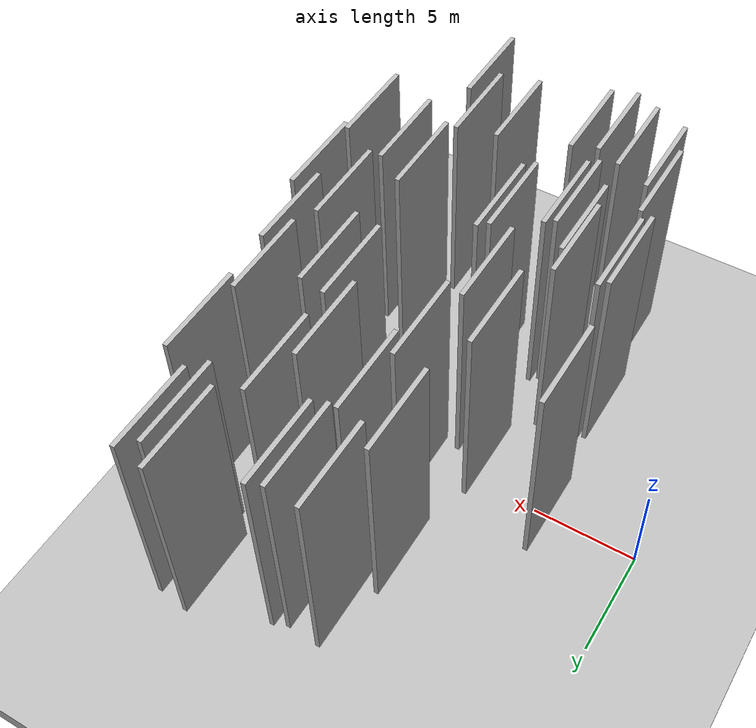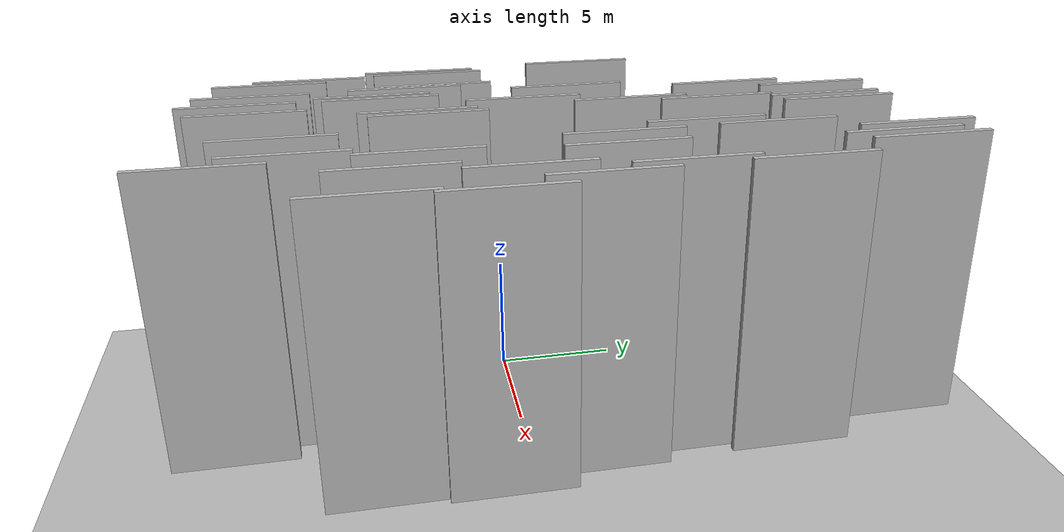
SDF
<?xml version="1.0" encoding="utf-8"?>

<sdf version="1.6">

   <world name="default">

      <gui fullscreen="0">

         <camera name="user_camera">

            <pose>-15 0 4.57585 0 0 0</pose>

            <view_controller>orbit</view_controller>

         </camera>

      </gui>

      <scene>

         <sky>

           <clouds>

             <speed>12</speed>

           </clouds>

         </sky>

         <ambient>0.4 0.4 0.4 1</ambient>

         <background>0.7 0.7 0.7 1</background>

         <shadows>1</shadows>

      </scene>

      <gravity>0 0 -9.8066</gravity>

      <magnetic_field>6e-06 2.3e-05 -4.2e-05</magnetic_field>

      <physics default="0" name="default_physics" type="ode">

         <ode>

            <solver>

               <type>quick</type>

               <iters>10</iters>

               <sor>1.0</sor>

               <use_dynamic_moi_rescaling>0</use_dynamic_moi_rescaling>

            </solver>

            <constraints>

               <cfm>0</cfm>

               <erp>0.2</erp>

               <contact_max_correcting_vel>100</contact_max_correcting_vel>

               <contact_surface_layer>0.001</contact_surface_layer>

            </constraints>

         </ode>

         <max_step_size>0.004</max_step_size>

         <real_time_factor>1</real_time_factor>

         <real_time_update_rate>250</real_time_update_rate>

      </physics>

      <light name="sun" type="directional">

         <cast_shadows>1</cast_shadows>

         <pose>0 0 10 0 0 0</pose>

         <diffuse>0.8 0.8 0.8 1</diffuse>

         <specular>0.2 0.2 0.2 1</specular>

         <attenuation>

            <range>1000</range>

            <constant>0.9</constant>

            <linear>0.01</linear>

            <quadratic>0.001</quadratic>

         </attenuation>

         <direction>-0.5 0.1 -0.9</direction>

      </light>

      <include>

         <name>ground_plane_1</name>

         <uri>model://HANNAS_ground_plane</uri>

         <pose>0 0 0  0 0 0</pose>

      </include>

      <include>

         <name>ground_plane_2</name>

         <uri>model://HANNAS_ground_plane</uri>

         <pose>100 0 0  0 0 0</pose>

      </include>

      <model name="HANNAS_wall_1">

         <static>1</static>

         <pose frame="">13.7882 2.1451 5.0 0.000000 0.000000 1.570796</pose>

         <link name="link">

            <pose frame="">0 0 5.00 0 0 0</pose>

            <collision name="collision">

               <geometry>

                  <box>

                     <size>4.00 0.2 10.00</size>

                  </box>

               </geometry>

               <max_contacts>10</max_contacts>

               <surface>

                  <contact>

                     <ode/>

                  </contact>

                  <bounce/>

                  <friction>

                     <torsional>

                        <ode/>

                     </torsional>

                     <ode/>

                  </friction>

               </surface>

            </collision>

            <visual name="visual">

               <cast_shadows>0</cast_shadows>

               <geometry>

                  <box>

                     <size>4.00 0.2 10.00</size>

                  </box>

               </geometry>

               <material>

                  <script>

                     <uri>model://HANNAS_wall/materials/scripts</uri>

                     <uri>model://HANNAS_wall/materials/textures</uri>

                     <name>vrc/HANNAS_wall</name>

                  </script>

               </material>

            </visual>

            <self_collide>0</self_collide>

            <enable_wind>0</enable_wind>

            <kinematic>0</kinematic>

         </link>

      </model>

      <model name="HANNAS_wall_2">

         <static>1</static>

         <pose frame="">15.2211 -1.1042 5.0 0.000000 0.000000 1.570796</pose>

         <link name="link">

            <pose frame="">0 0 5.00 0 0 0</pose>

            <collision name="collision">

               <geometry>

                  <box>

                     <size>4.00 0.2 10.00</size>

                  </box>

               </geometry>

               <max_contacts>10</max_contacts>

               <surface>

                  <contact>

                     <ode/>

                  </contact>

                  <bounce/>

                  <friction>

                     <torsional>

                        <ode/>

                     </torsional>

                     <ode/>

                  </friction>

               </surface>

            </collision>

            <visual name="visual">

               <cast_shadows>0</cast_shadows>

               <geometry>

                  <box>

                     <size>4.00 0.2 10.00</size>

                  </box>

               </geometry>

               <material>

                  <script>

                     <uri>model://HANNAS_wall/materials/scripts</uri>

                     <uri>model://HANNAS_wall/materials/textures</uri>

                     <name>vrc/HANNAS_wall</name>

                  </script>

               </material>

            </visual>

            <self_collide>0</self_collide>

            <enable_wind>0</enable_wind>

            <kinematic>0</kinematic>

         </link>

      </model>

      <model name="HANNAS_wall_3">

         <static>1</static>

         <pose frame="">16.7750 -5.7609 5.0 0.000000 0.000000 1.570796</pose>

         <link name="link">

            <pose frame="">0 0 5.00 0 0 0</pose>

            <collision name="collision">

               <geometry>

                  <box>

                     <size>4.00 0.2 10.00</size>

                  </box>

               </geometry>

               <max_contacts>10</max_contacts>

               <surface>

                  <contact>

                     <ode/>

                  </contact>

                  <bounce/>

                  <friction>

                     <torsional>

                        <ode/>

                     </torsional>

                     <ode/>

                  </friction>

               </surface>

            </collision>

            <visual name="visual">

               <cast_shadows>0</cast_shadows>

               <geometry>

                  <box>

                     <size>4.00 0.2 10.00</size>

                  </box>

               </geometry>

               <material>

                  <script>

                     <uri>model://HANNAS_wall/materials/scripts</uri>

                     <uri>model://HANNAS_wall/materials/textures</uri>

                     <name>vrc/HANNAS_wall</name>

                  </script>

               </material>

            </visual>

            <self_collide>0</self_collide>

            <enable_wind>0</enable_wind>

            <kinematic>0</kinematic>

         </link>

      </model>

      <model name="HANNAS_wall_4">

         <static>1</static>

         <pose frame="">12.6694 2.3219 5.0 0.000000 0.000000 1.570796</pose>

         <link name="link">

            <pose frame="">0 0 5.00 0 0 0</pose>

            <collision name="collision">

               <geometry>

                  <box>

                     <size>4.00 0.2 10.00</size>

                  </box>

               </geometry>

               <max_contacts>10</max_contacts>

               <surface>

                  <contact>

                     <ode/>

                  </contact>

                  <bounce/>

                  <friction>

                     <torsional>

                        <ode/>

                     </torsional>

                     <ode/>

                  </friction>

               </surface>

            </collision>

            <visual name="visual">

               <cast_shadows>0</cast_shadows>

               <geometry>

                  <box>

                     <size>4.00 0.2 10.00</size>

                  </box>

               </geometry>

               <material>

                  <script>

                     <uri>model://HANNAS_wall/materials/scripts</uri>

                     <uri>model://HANNAS_wall/materials/textures</uri>

                     <name>vrc/HANNAS_wall</name>

                  </script>

               </material>

            </visual>

            <self_collide>0</self_collide>

            <enable_wind>0</enable_wind>

            <kinematic>0</kinematic>

         </link>

      </model>

      <model name="HANNAS_wall_5">

         <static>1</static>

         <pose frame="">6.9106 -5.2990 5.0 0.000000 0.000000 1.570796</pose>

         <link name="link">

            <pose frame="">0 0 5.00 0 0 0</pose>

            <collision name="collision">

               <geometry>

                  <box>

                     <size>4.00 0.2 10.00</size>

                  </box>

               </geometry>

               <max_contacts>10</max_contacts>

               <surface>

                  <contact>

                     <ode/>

                  </contact>

                  <bounce/>

                  <friction>

                     <torsional>

                        <ode/>

                     </torsional>

                     <ode/>

                  </friction>

               </surface>

            </collision>

            <visual name="visual">

               <cast_shadows>0</cast_shadows>

               <geometry>

                  <box>

                     <size>4.00 0.2 10.00</size>

                  </box>

               </geometry>

               <material>

                  <script>

                     <uri>model://HANNAS_wall/materials/scripts</uri>

                     <uri>model://HANNAS_wall/materials/textures</uri>

                     <name>vrc/HANNAS_wall</name>

                  </script>

               </material>

            </visual>

            <self_collide>0</self_collide>

            <enable_wind>0</enable_wind>

            <kinematic>0</kinematic>

         </link>

      </model>

      <model name="HANNAS_wall_6">

         <static>1</static>

         <pose frame="">12.5727 7.4707 5.0 0.000000 0.000000 1.570796</pose>

         <link name="link">

            <pose frame="">0 0 5.00 0 0 0</pose>

            <collision name="collision">

               <geometry>

                  <box>

                     <size>4.00 0.2 10.00</size>

                  </box>

               </geometry>

               <max_contacts>10</max_contacts>

               <surface>

                  <contact>

                     <ode/>

                  </contact>

                  <bounce/>

                  <friction>

                     <torsional>

                        <ode/>

                     </torsional>

                     <ode/>

                  </friction>

               </surface>

            </collision>

            <visual name="visual">

               <cast_shadows>0</cast_shadows>

               <geometry>

                  <box>

                     <size>4.00 0.2 10.00</size>

                  </box>

               </geometry>

               <material>

                  <script>

                     <uri>model://HANNAS_wall/materials/scripts</uri>

                     <uri>model://HANNAS_wall/materials/textures</uri>

                     <name>vrc/HANNAS_wall</name>

                  </script>

               </material>

            </visual>

            <self_collide>0</self_collide>

            <enable_wind>0</enable_wind>

            <kinematic>0</kinematic>

         </link>

      </model>

      <model name="HANNAS_wall_7">

         <static>1</static>

         <pose frame="">4.0674 -3.1351 5.0 0.000000 0.000000 1.570796</pose>

         <link name="link">

            <pose frame="">0 0 5.00 0 0 0</pose>

            <collision name="collision">

               <geometry>

                  <box>

                     <size>4.00 0.2 10.00</size>

                  </box>

               </geometry>

               <max_contacts>10</max_contacts>

               <surface>

                  <contact>

                     <ode/>

                  </contact>

                  <bounce/>

                  <friction>

                     <torsional>

                        <ode/>

                     </torsional>

                     <ode/>

                  </friction>

               </surface>

            </collision>

            <visual name="visual">

               <cast_shadows>0</cast_shadows>

               <geometry>

                  <box>

                     <size>4.00 0.2 10.00</size>

                  </box>

               </geometry>

               <material>

                  <script>

                     <uri>model://HANNAS_wall/materials/scripts</uri>

                     <uri>model://HANNAS_wall/materials/textures</uri>

                     <name>vrc/HANNAS_wall</name>

                  </script>

               </material>

            </visual>

            <self_collide>0</self_collide>

            <enable_wind>0</enable_wind>

            <kinematic>0</kinematic>

         </link>

      </model>

      <model name="HANNAS_wall_8">

         <static>1</static>

         <pose frame="">14.2873 10.9999 5.0 0.000000 0.000000 1.570796</pose>

         <link name="link">

            <pose frame="">0 0 5.00 0 0 0</pose>

            <collision name="collision">

               <geometry>

                  <box>

                     <size>4.00 0.2 10.00</size>

                  </box>

               </geometry>

               <max_contacts>10</max_contacts>

               <surface>

                  <contact>

                     <ode/>

                  </contact>

                  <bounce/>

                  <friction>

                     <torsional>

                        <ode/>

                     </torsional>

                     <ode/>

                  </friction>

               </surface>

            </collision>

            <visual name="visual">

               <cast_shadows>0</cast_shadows>

               <geometry>

                  <box>

                     <size>4.00 0.2 10.00</size>

                  </box>

               </geometry>

               <material>

                  <script>

                     <uri>model://HANNAS_wall/materials/scripts</uri>

                     <uri>model://HANNAS_wall/materials/textures</uri>

                     <name>vrc/HANNAS_wall</name>

                  </script>

               </material>

            </visual>

            <self_collide>0</self_collide>

            <enable_wind>0</enable_wind>

            <kinematic>0</kinematic>

         </link>

      </model>

      <model name="HANNAS_wall_9">

         <static>1</static>

         <pose frame="">9.0641 -3.8773 5.0 0.000000 0.000000 1.570796</pose>

         <link name="link">

            <pose frame="">0 0 5.00 0 0 0</pose>

            <collision name="collision">

               <geometry>

                  <box>

                     <size>4.00 0.2 10.00</size>

                  </box>

               </geometry>

               <max_contacts>10</max_contacts>

               <surface>

                  <contact>

                     <ode/>

                  </contact>

                  <bounce/>

                  <friction>

                     <torsional>

                        <ode/>

                     </torsional>

                     <ode/>

                  </friction>

               </surface>

            </collision>

            <visual name="visual">

               <cast_shadows>0</cast_shadows>

               <geometry>

                  <box>

                     <size>4.00 0.2 10.00</size>

                  </box>

               </geometry>

               <material>

                  <script>

                     <uri>model://HANNAS_wall/materials/scripts</uri>

                     <uri>model://HANNAS_wall/materials/textures</uri>

                     <name>vrc/HANNAS_wall</name>

                  </script>

               </material>

            </visual>

            <self_collide>0</self_collide>

            <enable_wind>0</enable_wind>

            <kinematic>0</kinematic>

         </link>

      </model>

      <model name="HANNAS_wall_10">

         <static>1</static>

         <pose frame="">9.3653 6.4794 5.0 0.000000 0.000000 1.570796</pose>

         <link name="link">

            <pose frame="">0 0 5.00 0 0 0</pose>

            <collision name="collision">

               <geometry>

                  <box>

                     <size>4.00 0.2 10.00</size>

                  </box>

               </geometry>

               <max_contacts>10</max_contacts>

               <surface>

                  <contact>

                     <ode/>

                  </contact>

                  <bounce/>

                  <friction>

                     <torsional>

                        <ode/>

                     </torsional>

                     <ode/>

                  </friction>

               </surface>

            </collision>

            <visual name="visual">

               <cast_shadows>0</cast_shadows>

               <geometry>

                  <box>

                     <size>4.00 0.2 10.00</size>

                  </box>

               </geometry>

               <material>

                  <script>

                     <uri>model://HANNAS_wall/materials/scripts</uri>

                     <uri>model://HANNAS_wall/materials/textures</uri>

                     <name>vrc/HANNAS_wall</name>

                  </script>

               </material>

            </visual>

            <self_collide>0</self_collide>

            <enable_wind>0</enable_wind>

            <kinematic>0</kinematic>

         </link>

      </model>

      <model name="HANNAS_wall_11">

         <static>1</static>

         <pose frame="">13.5798 11.8175 5.0 0.000000 0.000000 1.570796</pose>

         <link name="link">

            <pose frame="">0 0 5.00 0 0 0</pose>

            <collision name="collision">

               <geometry>

                  <box>

                     <size>4.00 0.2 10.00</size>

                  </box>

               </geometry>

               <max_contacts>10</max_contacts>

               <surface>

                  <contact>

                     <ode/>

                  </contact>

                  <bounce/>

                  <friction>

                     <torsional>

                        <ode/>

                     </torsional>

                     <ode/>

                  </friction>

               </surface>

            </collision>

            <visual name="visual">

               <cast_shadows>0</cast_shadows>

               <geometry>

                  <box>

                     <size>4.00 0.2 10.00</size>

                  </box>

               </geometry>

               <material>

                  <script>

                     <uri>model://HANNAS_wall/materials/scripts</uri>

                     <uri>model://HANNAS_wall/materials/textures</uri>

                     <name>vrc/HANNAS_wall</name>

                  </script>

               </material>

            </visual>

            <self_collide>0</self_collide>

            <enable_wind>0</enable_wind>

            <kinematic>0</kinematic>

         </link>

      </model>

      <model name="HANNAS_wall_12">

         <static>1</static>

         <pose frame="">5.8430 -2.9900 5.0 0.000000 0.000000 1.570796</pose>

         <link name="link">

            <pose frame="">0 0 5.00 0 0 0</pose>

            <collision name="collision">

               <geometry>

                  <box>

                     <size>4.00 0.2 10.00</size>

                  </box>

               </geometry>

               <max_contacts>10</max_contacts>

               <surface>

                  <contact>

                     <ode/>

                  </contact>

                  <bounce/>

                  <friction>

                     <torsional>

                        <ode/>

                     </torsional>

                     <ode/>

                  </friction>

               </surface>

            </collision>

            <visual name="visual">

               <cast_shadows>0</cast_shadows>

               <geometry>

                  <box>

                     <size>4.00 0.2 10.00</size>

                  </box>

               </geometry>

               <material>

                  <script>

                     <uri>model://HANNAS_wall/materials/scripts</uri>

                     <uri>model://HANNAS_wall/materials/textures</uri>

                     <name>vrc/HANNAS_wall</name>

                  </script>

               </material>

            </visual>

            <self_collide>0</self_collide>

            <enable_wind>0</enable_wind>

            <kinematic>0</kinematic>

         </link>

      </model>

      <model name="HANNAS_wall_13">

         <static>1</static>

         <pose frame="">12.9214 -8.0760 5.0 0.000000 0.000000 1.570796</pose>

         <link name="link">

            <pose frame="">0 0 5.00 0 0 0</pose>

            <collision name="collision">

               <geometry>

                  <box>

                     <size>4.00 0.2 10.00</size>

                  </box>

               </geometry>

               <max_contacts>10</max_contacts>

               <surface>

                  <contact>

                     <ode/>

                  </contact>

                  <bounce/>

                  <friction>

                     <torsional>

                        <ode/>

                     </torsional>

                     <ode/>

                  </friction>

               </surface>

            </collision>

            <visual name="visual">

               <cast_shadows>0</cast_shadows>

               <geometry>

                  <box>

                     <size>4.00 0.2 10.00</size>

                  </box>

               </geometry>

               <material>

                  <script>

                     <uri>model://HANNAS_wall/materials/scripts</uri>

                     <uri>model://HANNAS_wall/materials/textures</uri>

                     <name>vrc/HANNAS_wall</name>

                  </script>

               </material>

            </visual>

            <self_collide>0</self_collide>

            <enable_wind>0</enable_wind>

            <kinematic>0</kinematic>

         </link>

      </model>

      <model name="HANNAS_wall_14">

         <static>1</static>

         <pose frame="">7.5355 7.4163 5.0 0.000000 0.000000 1.570796</pose>

         <link name="link">

            <pose frame="">0 0 5.00 0 0 0</pose>

            <collision name="collision">

               <geometry>

                  <box>

                     <size>4.00 0.2 10.00</size>

                  </box>

               </geometry>

               <max_contacts>10</max_contacts>

               <surface>

                  <contact>

                     <ode/>

                  </contact>

                  <bounce/>

                  <friction>

                     <torsional>

                        <ode/>

                     </torsional>

                     <ode/>

                  </friction>

               </surface>

            </collision>

            <visual name="visual">

               <cast_shadows>0</cast_shadows>

               <geometry>

                  <box>

                     <size>4.00 0.2 10.00</size>

                  </box>

               </geometry>

               <material>

                  <script>

                     <uri>model://HANNAS_wall/materials/scripts</uri>

                     <uri>model://HANNAS_wall/materials/textures</uri>

                     <name>vrc/HANNAS_wall</name>

                  </script>

               </material>

            </visual>

            <self_collide>0</self_collide>

            <enable_wind>0</enable_wind>

            <kinematic>0</kinematic>

         </link>

      </model>

      <model name="HANNAS_wall_15">

         <static>1</static>

         <pose frame="">6.0654 -4.1187 5.0 0.000000 0.000000 1.570796</pose>

         <link name="link">

            <pose frame="">0 0 5.00 0 0 0</pose>

            <collision name="collision">

               <geometry>

                  <box>

                     <size>4.00 0.2 10.00</size>

                  </box>

               </geometry>

               <max_contacts>10</max_contacts>

               <surface>

                  <contact>

                     <ode/>

                  </contact>

                  <bounce/>

                  <friction>

                     <torsional>

                        <ode/>

                     </torsional>

                     <ode/>

                  </friction>

               </surface>

            </collision>

            <visual name="visual">

               <cast_shadows>0</cast_shadows>

               <geometry>

                  <box>

                     <size>4.00 0.2 10.00</size>

                  </box>

               </geometry>

               <material>

                  <script>

                     <uri>model://HANNAS_wall/materials/scripts</uri>

                     <uri>model://HANNAS_wall/materials/textures</uri>

                     <name>vrc/HANNAS_wall</name>

                  </script>

               </material>

            </visual>

            <self_collide>0</self_collide>

            <enable_wind>0</enable_wind>

            <kinematic>0</kinematic>

         </link>

      </model>

      <model name="HANNAS_wall_16">

         <static>1</static>

         <pose frame="">9.4680 -3.5441 5.0 0.000000 0.000000 1.570796</pose>

         <link name="link">

            <pose frame="">0 0 5.00 0 0 0</pose>

            <collision name="collision">

               <geometry>

                  <box>

                     <size>4.00 0.2 10.00</size>

                  </box>

               </geometry>

               <max_contacts>10</max_contacts>

               <surface>

                  <contact>

                     <ode/>

                  </contact>

                  <bounce/>

                  <friction>

                     <torsional>

                        <ode/>

                     </torsional>

                     <ode/>

                  </friction>

               </surface>

            </collision>

            <visual name="visual">

               <cast_shadows>0</cast_shadows>

               <geometry>

                  <box>

                     <size>4.00 0.2 10.00</size>

                  </box>

               </geometry>

               <material>

                  <script>

                     <uri>model://HANNAS_wall/materials/scripts</uri>

                     <uri>model://HANNAS_wall/materials/textures</uri>

                     <name>vrc/HANNAS_wall</name>

                  </script>

               </material>

            </visual>

            <self_collide>0</self_collide>

            <enable_wind>0</enable_wind>

            <kinematic>0</kinematic>

         </link>

      </model>

      <model name="HANNAS_wall_17">

         <static>1</static>

         <pose frame="">6.8388 1.6233 5.0 0.000000 0.000000 1.570796</pose>

         <link name="link">

            <pose frame="">0 0 5.00 0 0 0</pose>

            <collision name="collision">

               <geometry>

                  <box>

                     <size>4.00 0.2 10.00</size>

                  </box>

               </geometry>

               <max_contacts>10</max_contacts>

               <surface>

                  <contact>

                     <ode/>

                  </contact>

                  <bounce/>

                  <friction>

                     <torsional>

                        <ode/>

                     </torsional>

                     <ode/>

                  </friction>

               </surface>

            </collision>

            <visual name="visual">

               <cast_shadows>0</cast_shadows>

               <geometry>

                  <box>

                     <size>4.00 0.2 10.00</size>

                  </box>

               </geometry>

               <material>

                  <script>

                     <uri>model://HANNAS_wall/materials/scripts</uri>

                     <uri>model://HANNAS_wall/materials/textures</uri>

                     <name>vrc/HANNAS_wall</name>

                  </script>

               </material>

            </visual>

            <self_collide>0</self_collide>

            <enable_wind>0</enable_wind>

            <kinematic>0</kinematic>

         </link>

      </model>

      <model name="HANNAS_wall_18">

         <static>1</static>

         <pose frame="">3.3852 2.7292 5.0 0.000000 0.000000 1.570796</pose>

         <link name="link">

            <pose frame="">0 0 5.00 0 0 0</pose>

            <collision name="collision">

               <geometry>

                  <box>

                     <size>4.00 0.2 10.00</size>

                  </box>

               </geometry>

               <max_contacts>10</max_contacts>

               <surface>

                  <contact>

                     <ode/>

                  </contact>

                  <bounce/>

                  <friction>

                     <torsional>

                        <ode/>

                     </torsional>

                     <ode/>

                  </friction>

               </surface>

            </collision>

            <visual name="visual">

               <cast_shadows>0</cast_shadows>

               <geometry>

                  <box>

                     <size>4.00 0.2 10.00</size>

                  </box>

               </geometry>

               <material>

                  <script>

                     <uri>model://HANNAS_wall/materials/scripts</uri>

                     <uri>model://HANNAS_wall/materials/textures</uri>

                     <name>vrc/HANNAS_wall</name>

                  </script>

               </material>

            </visual>

            <self_collide>0</self_collide>

            <enable_wind>0</enable_wind>

            <kinematic>0</kinematic>

         </link>

      </model>

      <model name="HANNAS_wall_19">

         <static>1</static>

         <pose frame="">8.9306 3.4871 5.0 0.000000 0.000000 1.570796</pose>

         <link name="link">

            <pose frame="">0 0 5.00 0 0 0</pose>

            <collision name="collision">

               <geometry>

                  <box>

                     <size>4.00 0.2 10.00</size>

                  </box>

               </geometry>

               <max_contacts>10</max_contacts>

               <surface>

                  <contact>

                     <ode/>

                  </contact>

                  <bounce/>

                  <friction>

                     <torsional>

                        <ode/>

                     </torsional>

                     <ode/>

                  </friction>

               </surface>

            </collision>

            <visual name="visual">

               <cast_shadows>0</cast_shadows>

               <geometry>

                  <box>

                     <size>4.00 0.2 10.00</size>

                  </box>

               </geometry>

               <material>

                  <script>

                     <uri>model://HANNAS_wall/materials/scripts</uri>

                     <uri>model://HANNAS_wall/materials/textures</uri>

                     <name>vrc/HANNAS_wall</name>

                  </script>

               </material>

            </visual>

            <self_collide>0</self_collide>

            <enable_wind>0</enable_wind>

            <kinematic>0</kinematic>

         </link>

      </model>

      <model name="HANNAS_wall_20">

         <static>1</static>

         <pose frame="">7.2857 -5.0212 5.0 0.000000 0.000000 1.570796</pose>

         <link name="link">

            <pose frame="">0 0 5.00 0 0 0</pose>

            <collision name="collision">

               <geometry>

                  <box>

                     <size>4.00 0.2 10.00</size>

                  </box>

               </geometry>

               <max_contacts>10</max_contacts>

               <surface>

                  <contact>

                     <ode/>

                  </contact>

                  <bounce/>

                  <friction>

                     <torsional>

                        <ode/>

                     </torsional>

                     <ode/>

                  </friction>

               </surface>

            </collision>

            <visual name="visual">

               <cast_shadows>0</cast_shadows>

               <geometry>

                  <box>

                     <size>4.00 0.2 10.00</size>

                  </box>

               </geometry>

               <material>

                  <script>

                     <uri>model://HANNAS_wall/materials/scripts</uri>

                     <uri>model://HANNAS_wall/materials/textures</uri>

                     <name>vrc/HANNAS_wall</name>

                  </script>

               </material>

            </visual>

            <self_collide>0</self_collide>

            <enable_wind>0</enable_wind>

            <kinematic>0</kinematic>

         </link>

      </model>

      <model name="HANNAS_wall_21">

         <static>1</static>

         <pose frame="">4.7145 -8.8698 5.0 0.000000 0.000000 1.570796</pose>

         <link name="link">

            <pose frame="">0 0 5.00 0 0 0</pose>

            <collision name="collision">

               <geometry>

                  <box>

                     <size>4.00 0.2 10.00</size>

                  </box>

               </geometry>

               <max_contacts>10</max_contacts>

               <surface>

                  <contact>

                     <ode/>

                  </contact>

                  <bounce/>

                  <friction>

                     <torsional>

                        <ode/>

                     </torsional>

                     <ode/>

                  </friction>

               </surface>

            </collision>

            <visual name="visual">

               <cast_shadows>0</cast_shadows>

               <geometry>

                  <box>

                     <size>4.00 0.2 10.00</size>

                  </box>

               </geometry>

               <material>

                  <script>

                     <uri>model://HANNAS_wall/materials/scripts</uri>

                     <uri>model://HANNAS_wall/materials/textures</uri>

                     <name>vrc/HANNAS_wall</name>

                  </script>

               </material>

            </visual>

            <self_collide>0</self_collide>

            <enable_wind>0</enable_wind>

            <kinematic>0</kinematic>

         </link>

      </model>

      <model name="HANNAS_wall_22">

         <static>1</static>

         <pose frame="">6.2030 -9.4338 5.0 0.000000 0.000000 1.570796</pose>

         <link name="link">

            <pose frame="">0 0 5.00 0 0 0</pose>

            <collision name="collision">

               <geometry>

                  <box>

                     <size>4.00 0.2 10.00</size>

                  </box>

               </geometry>

               <max_contacts>10</max_contacts>

               <surface>

                  <contact>

                     <ode/>

                  </contact>

                  <bounce/>

                  <friction>

                     <torsional>

                        <ode/>

                     </torsional>

                     <ode/>

                  </friction>

               </surface>

            </collision>

            <visual name="visual">

               <cast_shadows>0</cast_shadows>

               <geometry>

                  <box>

                     <size>4.00 0.2 10.00</size>

                  </box>

               </geometry>

               <material>

                  <script>

                     <uri>model://HANNAS_wall/materials/scripts</uri>

                     <uri>model://HANNAS_wall/materials/textures</uri>

                     <name>vrc/HANNAS_wall</name>

                  </script>

               </material>

            </visual>

            <self_collide>0</self_collide>

            <enable_wind>0</enable_wind>

            <kinematic>0</kinematic>

         </link>

      </model>

      <model name="HANNAS_wall_23">

         <static>1</static>

         <pose frame="">4.3025 -7.4743 5.0 0.000000 0.000000 1.570796</pose>

         <link name="link">

            <pose frame="">0 0 5.00 0 0 0</pose>

            <collision name="collision">

               <geometry>

                  <box>

                     <size>4.00 0.2 10.00</size>

                  </box>

               </geometry>

               <max_contacts>10</max_contacts>

               <surface>

                  <contact>

                     <ode/>

                  </contact>

                  <bounce/>

                  <friction>

                     <torsional>

                        <ode/>

                     </torsional>

                     <ode/>

                  </friction>

               </surface>

            </collision>

            <visual name="visual">

               <cast_shadows>0</cast_shadows>

               <geometry>

                  <box>

                     <size>4.00 0.2 10.00</size>

                  </box>

               </geometry>

               <material>

                  <script>

                     <uri>model://HANNAS_wall/materials/scripts</uri>

                     <uri>model://HANNAS_wall/materials/textures</uri>

                     <name>vrc/HANNAS_wall</name>

                  </script>

               </material>

            </visual>

            <self_collide>0</self_collide>

            <enable_wind>0</enable_wind>

            <kinematic>0</kinematic>

         </link>

      </model>

      <model name="HANNAS_wall_24">

         <static>1</static>

         <pose frame="">10.2997 10.6036 5.0 0.000000 0.000000 1.570796</pose>

         <link name="link">

            <pose frame="">0 0 5.00 0 0 0</pose>

            <collision name="collision">

               <geometry>

                  <box>

                     <size>4.00 0.2 10.00</size>

                  </box>

               </geometry>

               <max_contacts>10</max_contacts>

               <surface>

                  <contact>

                     <ode/>

                  </contact>

                  <bounce/>

                  <friction>

                     <torsional>

                        <ode/>

                     </torsional>

                     <ode/>

                  </friction>

               </surface>

            </collision>

            <visual name="visual">

               <cast_shadows>0</cast_shadows>

               <geometry>

                  <box>

                     <size>4.00 0.2 10.00</size>

                  </box>

               </geometry>

               <material>

                  <script>

                     <uri>model://HANNAS_wall/materials/scripts</uri>

                     <uri>model://HANNAS_wall/materials/textures</uri>

                     <name>vrc/HANNAS_wall</name>

                  </script>

               </material>

            </visual>

            <self_collide>0</self_collide>

            <enable_wind>0</enable_wind>

            <kinematic>0</kinematic>

         </link>

      </model>

      <model name="HANNAS_wall_25">

         <static>1</static>

         <pose frame="">11.9250 5.2454 5.0 0.000000 0.000000 1.570796</pose>

         <link name="link">

            <pose frame="">0 0 5.00 0 0 0</pose>

            <collision name="collision">

               <geometry>

                  <box>

                     <size>4.00 0.2 10.00</size>

                  </box>

               </geometry>

               <max_contacts>10</max_contacts>

               <surface>

                  <contact>

                     <ode/>

                  </contact>

                  <bounce/>

                  <friction>

                     <torsional>

                        <ode/>

                     </torsional>

                     <ode/>

                  </friction>

               </surface>

            </collision>

            <visual name="visual">

               <cast_shadows>0</cast_shadows>

               <geometry>

                  <box>

                     <size>4.00 0.2 10.00</size>

                  </box>

               </geometry>

               <material>

                  <script>

                     <uri>model://HANNAS_wall/materials/scripts</uri>

                     <uri>model://HANNAS_wall/materials/textures</uri>

                     <name>vrc/HANNAS_wall</name>

                  </script>

               </material>

            </visual>

            <self_collide>0</self_collide>

            <enable_wind>0</enable_wind>

            <kinematic>0</kinematic>

         </link>

      </model>

      <model name="HANNAS_wall_26">

         <static>1</static>

         <pose frame="">16.1038 7.2511 5.0 0.000000 0.000000 1.570796</pose>

         <link name="link">

            <pose frame="">0 0 5.00 0 0 0</pose>

            <collision name="collision">

               <geometry>

                  <box>

                     <size>4.00 0.2 10.00</size>

                  </box>

               </geometry>

               <max_contacts>10</max_contacts>

               <surface>

                  <contact>

                     <ode/>

                  </contact>

                  <bounce/>

                  <friction>

                     <torsional>

                        <ode/>

                     </torsional>

                     <ode/>

                  </friction>

               </surface>

            </collision>

            <visual name="visual">

               <cast_shadows>0</cast_shadows>

               <geometry>

                  <box>

                     <size>4.00 0.2 10.00</size>

                  </box>

               </geometry>

               <material>

                  <script>

                     <uri>model://HANNAS_wall/materials/scripts</uri>

                     <uri>model://HANNAS_wall/materials/textures</uri>

                     <name>vrc/HANNAS_wall</name>

                  </script>

               </material>

            </visual>

            <self_collide>0</self_collide>

            <enable_wind>0</enable_wind>

            <kinematic>0</kinematic>

         </link>

      </model>

      <model name="HANNAS_wall_27">

         <static>1</static>

         <pose frame="">13.6629 -10.5179 5.0 0.000000 0.000000 1.570796</pose>

         <link name="link">

            <pose frame="">0 0 5.00 0 0 0</pose>

            <collision name="collision">

               <geometry>

                  <box>

                     <size>4.00 0.2 10.00</size>

                  </box>

               </geometry>

               <max_contacts>10</max_contacts>

               <surface>

                  <contact>

                     <ode/>

                  </contact>

                  <bounce/>

                  <friction>

                     <torsional>

                        <ode/>

                     </torsional>

                     <ode/>

                  </friction>

               </surface>

            </collision>

            <visual name="visual">

               <cast_shadows>0</cast_shadows>

               <geometry>

                  <box>

                     <size>4.00 0.2 10.00</size>

                  </box>

               </geometry>

               <material>

                  <script>

                     <uri>model://HANNAS_wall/materials/scripts</uri>

                     <uri>model://HANNAS_wall/materials/textures</uri>

                     <name>vrc/HANNAS_wall</name>

                  </script>

               </material>

            </visual>

            <self_collide>0</self_collide>

            <enable_wind>0</enable_wind>

            <kinematic>0</kinematic>

         </link>

      </model>

      <model name="HANNAS_wall_28">

         <static>1</static>

         <pose frame="">15.6932 3.7351 5.0 0.000000 0.000000 1.570796</pose>

         <link name="link">

            <pose frame="">0 0 5.00 0 0 0</pose>

            <collision name="collision">

               <geometry>

                  <box>

                     <size>4.00 0.2 10.00</size>

                  </box>

               </geometry>

               <max_contacts>10</max_contacts>

               <surface>

                  <contact>

                     <ode/>

                  </contact>

                  <bounce/>

                  <friction>

                     <torsional>

                        <ode/>

                     </torsional>

                     <ode/>

                  </friction>

               </surface>

            </collision>

            <visual name="visual">

               <cast_shadows>0</cast_shadows>

               <geometry>

                  <box>

                     <size>4.00 0.2 10.00</size>

                  </box>

               </geometry>

               <material>

                  <script>

                     <uri>model://HANNAS_wall/materials/scripts</uri>

                     <uri>model://HANNAS_wall/materials/textures</uri>

                     <name>vrc/HANNAS_wall</name>

                  </script>

               </material>

            </visual>

            <self_collide>0</self_collide>

            <enable_wind>0</enable_wind>

            <kinematic>0</kinematic>

         </link>

      </model>

      <model name="HANNAS_wall_29">

         <static>1</static>

         <pose frame="">16.2713 1.0858 5.0 0.000000 0.000000 1.570796</pose>

         <link name="link">

            <pose frame="">0 0 5.00 0 0 0</pose>

            <collision name="collision">

               <geometry>

                  <box>

                     <size>4.00 0.2 10.00</size>

                  </box>

               </geometry>

               <max_contacts>10</max_contacts>

               <surface>

                  <contact>

                     <ode/>

                  </contact>

                  <bounce/>

                  <friction>

                     <torsional>

                        <ode/>

                     </torsional>

                     <ode/>

                  </friction>

               </surface>

            </collision>

            <visual name="visual">

               <cast_shadows>0</cast_shadows>

               <geometry>

                  <box>

                     <size>4.00 0.2 10.00</size>

                  </box>

               </geometry>

               <material>

                  <script>

                     <uri>model://HANNAS_wall/materials/scripts</uri>

                     <uri>model://HANNAS_wall/materials/textures</uri>

                     <name>vrc/HANNAS_wall</name>

                  </script>

               </material>

            </visual>

            <self_collide>0</self_collide>

            <enable_wind>0</enable_wind>

            <kinematic>0</kinematic>

         </link>

      </model>

      <model name="HANNAS_wall_30">

         <static>1</static>

         <pose frame="">7.2745 -9.8756 5.0 0.000000 0.000000 1.570796</pose>

         <link name="link">

            <pose frame="">0 0 5.00 0 0 0</pose>

            <collision name="collision">

               <geometry>

                  <box>

                     <size>4.00 0.2 10.00</size>

                  </box>

               </geometry>

               <max_contacts>10</max_contacts>

               <surface>

                  <contact>

                     <ode/>

                  </contact>

                  <bounce/>

                  <friction>

                     <torsional>

                        <ode/>

                     </torsional>

                     <ode/>

                  </friction>

               </surface>

            </collision>

            <visual name="visual">

               <cast_shadows>0</cast_shadows>

               <geometry>

                  <box>

                     <size>4.00 0.2 10.00</size>

                  </box>

               </geometry>

               <material>

                  <script>

                     <uri>model://HANNAS_wall/materials/scripts</uri>

                     <uri>model://HANNAS_wall/materials/textures</uri>

                     <name>vrc/HANNAS_wall</name>

                  </script>

               </material>

            </visual>

            <self_collide>0</self_collide>

            <enable_wind>0</enable_wind>

            <kinematic>0</kinematic>

         </link>

      </model>

      <model name="HANNAS_wall_31">

         <static>1</static>

         <pose frame="">14.9354 11.6142 5.0 0.000000 0.000000 1.570796</pose>

         <link name="link">

            <pose frame="">0 0 5.00 0 0 0</pose>

            <collision name="collision">

               <geometry>

                  <box>

                     <size>4.00 0.2 10.00</size>

                  </box>

               </geometry>

               <max_contacts>10</max_contacts>

               <surface>

                  <contact>

                     <ode/>

                  </contact>

                  <bounce/>

                  <friction>

                     <torsional>

                        <ode/>

                     </torsional>

                     <ode/>

                  </friction>

               </surface>

            </collision>

            <visual name="visual">

               <cast_shadows>0</cast_shadows>

               <geometry>

                  <box>

                     <size>4.00 0.2 10.00</size>

                  </box>

               </geometry>

               <material>

                  <script>

                     <uri>model://HANNAS_wall/materials/scripts</uri>

                     <uri>model://HANNAS_wall/materials/textures</uri>

                     <name>vrc/HANNAS_wall</name>

                  </script>

               </material>

            </visual>

            <self_collide>0</self_collide>

            <enable_wind>0</enable_wind>

            <kinematic>0</kinematic>

         </link>

      </model>

      <model name="HANNAS_wall_32">

         <static>1</static>

         <pose frame="">3.7539 -3.4288 5.0 0.000000 0.000000 1.570796</pose>

         <link name="link">

            <pose frame="">0 0 5.00 0 0 0</pose>

            <collision name="collision">

               <geometry>

                  <box>

                     <size>4.00 0.2 10.00</size>

                  </box>

               </geometry>

               <max_contacts>10</max_contacts>

               <surface>

                  <contact>

                     <ode/>

                  </contact>

                  <bounce/>

                  <friction>

                     <torsional>

                        <ode/>

                     </torsional>

                     <ode/>

                  </friction>

               </surface>

            </collision>

            <visual name="visual">

               <cast_shadows>0</cast_shadows>

               <geometry>

                  <box>

                     <size>4.00 0.2 10.00</size>

                  </box>

               </geometry>

               <material>

                  <script>

                     <uri>model://HANNAS_wall/materials/scripts</uri>

                     <uri>model://HANNAS_wall/materials/textures</uri>

                     <name>vrc/HANNAS_wall</name>

                  </script>

               </material>

            </visual>

            <self_collide>0</self_collide>

            <enable_wind>0</enable_wind>

            <kinematic>0</kinematic>

         </link>

      </model>

      <model name="HANNAS_wall_33">

         <static>1</static>

         <pose frame="">16.9869 -2.0396 5.0 0.000000 0.000000 1.570796</pose>

         <link name="link">

            <pose frame="">0 0 5.00 0 0 0</pose>

            <collision name="collision">

               <geometry>

                  <box>

                     <size>4.00 0.2 10.00</size>

                  </box>

               </geometry>

               <max_contacts>10</max_contacts>

               <surface>

                  <contact>

                     <ode/>

                  </contact>

                  <bounce/>

                  <friction>

                     <torsional>

                        <ode/>

                     </torsional>

                     <ode/>

                  </friction>

               </surface>

            </collision>

            <visual name="visual">

               <cast_shadows>0</cast_shadows>

               <geometry>

                  <box>

                     <size>4.00 0.2 10.00</size>

                  </box>

               </geometry>

               <material>

                  <script>

                     <uri>model://HANNAS_wall/materials/scripts</uri>

                     <uri>model://HANNAS_wall/materials/textures</uri>

                     <name>vrc/HANNAS_wall</name>

                  </script>

               </material>

            </visual>

            <self_collide>0</self_collide>

            <enable_wind>0</enable_wind>

            <kinematic>0</kinematic>

         </link>

      </model>

      <model name="HANNAS_wall_34">

         <static>1</static>

         <pose frame="">8.3291 -9.4901 5.0 0.000000 0.000000 1.570796</pose>

         <link name="link">

            <pose frame="">0 0 5.00 0 0 0</pose>

            <collision name="collision">

               <geometry>

                  <box>

                     <size>4.00 0.2 10.00</size>

                  </box>

               </geometry>

               <max_contacts>10</max_contacts>

               <surface>

                  <contact>

                     <ode/>

                  </contact>

                  <bounce/>

                  <friction>

                     <torsional>

                        <ode/>

                     </torsional>

                     <ode/>

                  </friction>

               </surface>

            </collision>

            <visual name="visual">

               <cast_shadows>0</cast_shadows>

               <geometry>

                  <box>

                     <size>4.00 0.2 10.00</size>

                  </box>

               </geometry>

               <material>

                  <script>

                     <uri>model://HANNAS_wall/materials/scripts</uri>

                     <uri>model://HANNAS_wall/materials/textures</uri>

                     <name>vrc/HANNAS_wall</name>

                  </script>

               </material>

            </visual>

            <self_collide>0</self_collide>

            <enable_wind>0</enable_wind>

            <kinematic>0</kinematic>

         </link>

      </model>

      <model name="HANNAS_wall_35">

         <static>1</static>

         <pose frame="">11.2546 -8.4883 5.0 0.000000 0.000000 1.570796</pose>

         <link name="link">

            <pose frame="">0 0 5.00 0 0 0</pose>

            <collision name="collision">

               <geometry>

                  <box>

                     <size>4.00 0.2 10.00</size>

                  </box>

               </geometry>

               <max_contacts>10</max_contacts>

               <surface>

                  <contact>

                     <ode/>

                  </contact>

                  <bounce/>

                  <friction>

                     <torsional>

                        <ode/>

                     </torsional>

                     <ode/>

                  </friction>

               </surface>

            </collision>

            <visual name="visual">

               <cast_shadows>0</cast_shadows>

               <geometry>

                  <box>

                     <size>4.00 0.2 10.00</size>

                  </box>

               </geometry>

               <material>

                  <script>

                     <uri>model://HANNAS_wall/materials/scripts</uri>

                     <uri>model://HANNAS_wall/materials/textures</uri>

                     <name>vrc/HANNAS_wall</name>

                  </script>

               </material>

            </visual>

            <self_collide>0</self_collide>

            <enable_wind>0</enable_wind>

            <kinematic>0</kinematic>

         </link>

      </model>

      <model name="HANNAS_wall_36">

         <static>1</static>

         <pose frame="">8.2721 10.4725 5.0 0.000000 0.000000 1.570796</pose>

         <link name="link">

            <pose frame="">0 0 5.00 0 0 0</pose>

            <collision name="collision">

               <geometry>

                  <box>

                     <size>4.00 0.2 10.00</size>

                  </box>

               </geometry>

               <max_contacts>10</max_contacts>

               <surface>

                  <contact>

                     <ode/>

                  </contact>

                  <bounce/>

                  <friction>

                     <torsional>

                        <ode/>

                     </torsional>

                     <ode/>

                  </friction>

               </surface>

            </collision>

            <visual name="visual">

               <cast_shadows>0</cast_shadows>

               <geometry>

                  <box>

                     <size>4.00 0.2 10.00</size>

                  </box>

               </geometry>

               <material>

                  <script>

                     <uri>model://HANNAS_wall/materials/scripts</uri>

                     <uri>model://HANNAS_wall/materials/textures</uri>

                     <name>vrc/HANNAS_wall</name>

                  </script>

               </material>

            </visual>

            <self_collide>0</self_collide>

            <enable_wind>0</enable_wind>

            <kinematic>0</kinematic>

         </link>

      </model>

      <model name="HANNAS_wall_37">

         <static>1</static>

         <pose frame="">13.3897 -4.1607 5.0 0.000000 0.000000 1.570796</pose>

         <link name="link">

            <pose frame="">0 0 5.00 0 0 0</pose>

            <collision name="collision">

               <geometry>

                  <box>

                     <size>4.00 0.2 10.00</size>

                  </box>

               </geometry>

               <max_contacts>10</max_contacts>

               <surface>

                  <contact>

                     <ode/>

                  </contact>

                  <bounce/>

                  <friction>

                     <torsional>

                        <ode/>

                     </torsional>

                     <ode/>

                  </friction>

               </surface>

            </collision>

            <visual name="visual">

               <cast_shadows>0</cast_shadows>

               <geometry>

                  <box>

                     <size>4.00 0.2 10.00</size>

                  </box>

               </geometry>

               <material>

                  <script>

                     <uri>model://HANNAS_wall/materials/scripts</uri>

                     <uri>model://HANNAS_wall/materials/textures</uri>

                     <name>vrc/HANNAS_wall</name>

                  </script>

               </material>

            </visual>

            <self_collide>0</self_collide>

            <enable_wind>0</enable_wind>

            <kinematic>0</kinematic>

         </link>

      </model>

      <model name="HANNAS_wall_38">

         <static>1</static>

         <pose frame="">8.1794 -0.1729 5.0 0.000000 0.000000 1.570796</pose>

         <link name="link">

            <pose frame="">0 0 5.00 0 0 0</pose>

            <collision name="collision">

               <geometry>

                  <box>

                     <size>4.00 0.2 10.00</size>

                  </box>

               </geometry>

               <max_contacts>10</max_contacts>

               <surface>

                  <contact>

                     <ode/>

                  </contact>

                  <bounce/>

                  <friction>

                     <torsional>

                        <ode/>

                     </torsional>

                     <ode/>

                  </friction>

               </surface>

            </collision>

            <visual name="visual">

               <cast_shadows>0</cast_shadows>

               <geometry>

                  <box>

                     <size>4.00 0.2 10.00</size>

                  </box>

               </geometry>

               <material>

                  <script>

                     <uri>model://HANNAS_wall/materials/scripts</uri>

                     <uri>model://HANNAS_wall/materials/textures</uri>

                     <name>vrc/HANNAS_wall</name>

                  </script>

               </material>

            </visual>

            <self_collide>0</self_collide>

            <enable_wind>0</enable_wind>

            <kinematic>0</kinematic>

         </link>

      </model>

      <model name="HANNAS_wall_39">

         <static>1</static>

         <pose frame="">9.6936 10.3661 5.0 0.000000 0.000000 1.570796</pose>

         <link name="link">

            <pose frame="">0 0 5.00 0 0 0</pose>

            <collision name="collision">

               <geometry>

                  <box>

                     <size>4.00 0.2 10.00</size>

                  </box>

               </geometry>

               <max_contacts>10</max_contacts>

               <surface>

                  <contact>

                     <ode/>

                  </contact>

                  <bounce/>

                  <friction>

                     <torsional>

                        <ode/>

                     </torsional>

                     <ode/>

                  </friction>

               </surface>

            </collision>

            <visual name="visual">

               <cast_shadows>0</cast_shadows>

               <geometry>

                  <box>

                     <size>4.00 0.2 10.00</size>

                  </box>

               </geometry>

               <material>

                  <script>

                     <uri>model://HANNAS_wall/materials/scripts</uri>

                     <uri>model://HANNAS_wall/materials/textures</uri>

                     <name>vrc/HANNAS_wall</name>

                  </script>

               </material>

            </visual>

            <self_collide>0</self_collide>

            <enable_wind>0</enable_wind>

            <kinematic>0</kinematic>

         </link>

      </model>

      <model name="HANNAS_wall_40">

         <static>1</static>

         <pose frame="">14.7072 -5.0406 5.0 0.000000 0.000000 1.570796</pose>

         <link name="link">

            <pose frame="">0 0 5.00 0 0 0</pose>

            <collision name="collision">

               <geometry>

                  <box>

                     <size>4.00 0.2 10.00</size>

                  </box>

               </geometry>

               <max_contacts>10</max_contacts>

               <surface>

                  <contact>

                     <ode/>

                  </contact>

                  <bounce/>

                  <friction>

                     <torsional>

                        <ode/>

                     </torsional>

                     <ode/>

                  </friction>

               </surface>

            </collision>

            <visual name="visual">

               <cast_shadows>0</cast_shadows>

               <geometry>

                  <box>

                     <size>4.00 0.2 10.00</size>

                  </box>

               </geometry>

               <material>

                  <script>

                     <uri>model://HANNAS_wall/materials/scripts</uri>

                     <uri>model://HANNAS_wall/materials/textures</uri>

                     <name>vrc/HANNAS_wall</name>

                  </script>

               </material>

            </visual>

            <self_collide>0</self_collide>

            <enable_wind>0</enable_wind>

            <kinematic>0</kinematic>

         </link>

      </model>

   </world>

</sdf>
